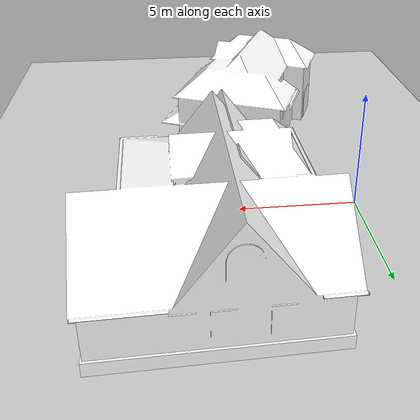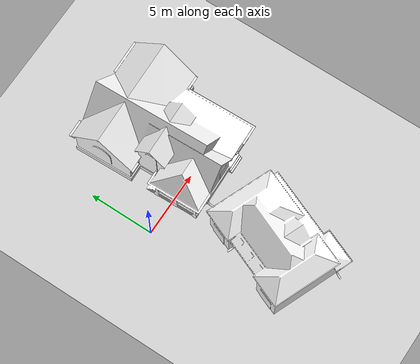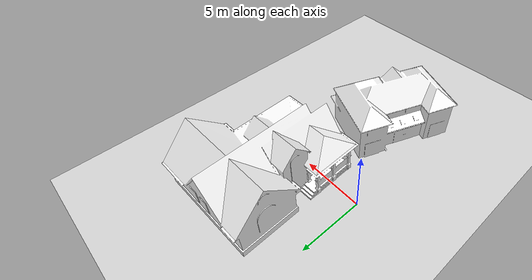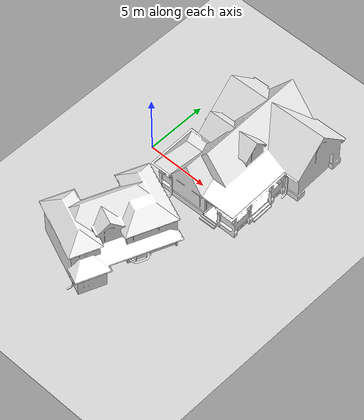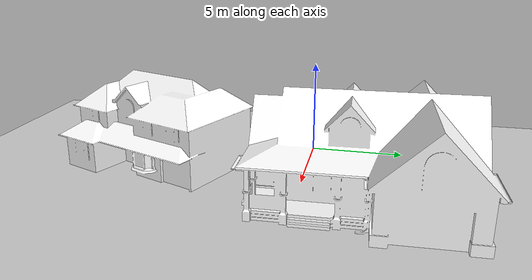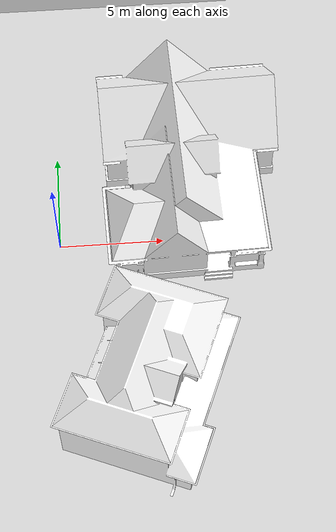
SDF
<sdf version="1.4">
 <world name="default">
  <light name="sun" type="directional">
   <pose>0 0 10 0 -0 0</pose>
   <diffuse>0.8 0.8 0.8 1</diffuse>
   <specular>0.2 0.2 0.2 1</specular>
   <attenuation>
    <range>1000</range>
    <constant>0.9</constant>
    <linear>0.01</linear>
    <quadratic>0.001</quadratic>
   </attenuation>
   <direction>-0.5 0.1 -0.9</direction>
  </light>
  <model name="ground_plane">
   <static>1</static>
   <link name="link">
    <collision name="collision">
     <geometry><plane><normal>0 0 1</normal><size>100 100</size></plane></geometry>
     <surface><friction><ode><mu>100</mu><mu2>50</mu2></ode></friction></surface>
    </collision>
    <visual name="visual">
     <cast_shadows>0</cast_shadows>
     <geometry><plane><normal>0 0 1</normal><size>100 100</size></plane></geometry>
     <material>
      <script><uri>file://media/materials/scripts/gazebo.material</uri><name>Gazebo/Grey</name></script>
     </material>
    </visual>
    <velocity_decay><linear>0</linear><angular>0</angular></velocity_decay>
   </link>
  </model>
  <physics type="ode">
   <max_step_size>0.001</max_step_size>
   <real_time_factor>1</real_time_factor>
   <real_time_update_rate>1000</real_time_update_rate>
   <gravity>0 0 -9.8</gravity>
  </physics>
  <scene><ambient>0.4 0.4 0.4 1</ambient><background>0.7 0.7 0.7 1</background><shadows>1</shadows></scene>
  <model name="House 1">
   <static>1</static>
   <link name="link">
    <collision name="collision">
     <geometry><mesh><uri>model://house_1/meshes/house_1.dae</uri></mesh></geometry>
    </collision>
    <visual name="visual">
     <geometry><mesh><uri>model://house_1/meshes/house_1.dae</uri></mesh></geometry>
     <material>
      <script>
       <uri>model://house_1/materials/scripts</uri>
       <uri>model://house_1/materials/textures</uri>
       <name>House_1/Diffuse</name>
      </script>
      <shader type="normal_map_object_space"><normal_map>House_1_Normal.png</normal_map></shader>
     </material>
    </visual>
    <velocity_decay><linear>0</linear><angular>0</angular></velocity_decay>
   </link>
   <pose>6.22686 3.1677 0 0 -0 1.6</pose>
  </model>
  <model name="House 2">
   <static>1</static>
   <link name="link">
    <collision name="collision">
     <geometry><mesh><uri>model://house_2/meshes/house_2.dae</uri></mesh></geometry>
    </collision>
    <visual name="visual">
     <geometry><mesh><uri>model://house_2/meshes/house_2.dae</uri></mesh></geometry>
     <material>
      <script>
       <uri>model://house_2/materials/scripts</uri>
       <uri>model://house_2/materials/textures</uri>
       <uri>model://house_1/materials/textures</uri>
       <name>House_2/Diffuse</name>
      </script>
      <shader type="normal_map_object_space">
       <normal_map>model://house_1/materials/textures/House_1_Normal.png</normal_map>
      </shader>
     </material>
    </visual>
    <velocity_decay><linear>0</linear><angular>0</angular></velocity_decay>
   </link>
   <pose>3.82985 -7.11901 0 0 0 -1.96</pose>
  </model>
 </world>
</sdf>
